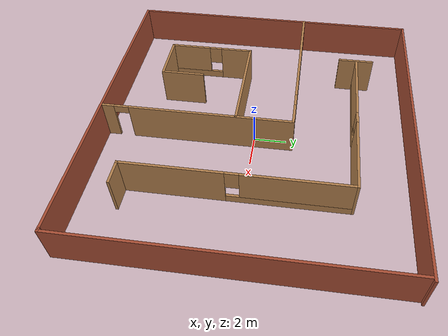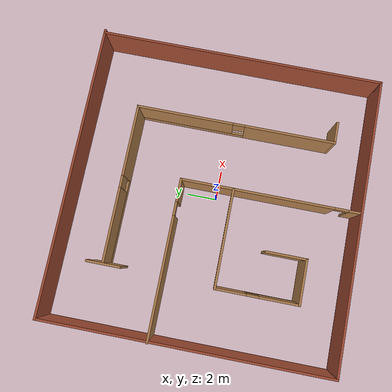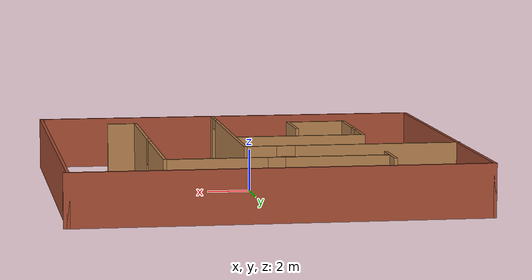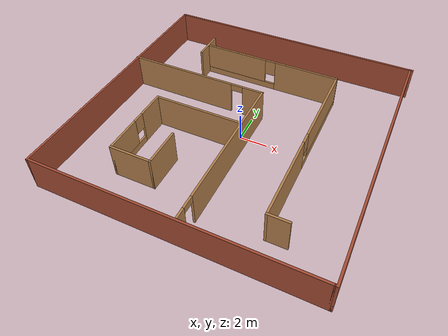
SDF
<?xml version='1.0'?>
<sdf version='1.7'>
  <model name='maze_model'>
    <pose>-0.09937 0.063572 0 0 -0 0</pose>
    <link name='Wall_10'>
      <pose>-0.271155 6.08651 0 0 -0 3.14159</pose>
      <visual name='Wall_10_Visual_0'>
        <pose>-2.84357 0 1.25 0 -0 0</pose>
        <geometry>
          <box>
            <size>4.81286 0.15 2.5</size>
          </box>
        </geometry>
        <material>
          <script>
            <uri>file://media/materials/scripts/gazebo.material</uri>
            <name>Gazebo/Wood</name>
          </script>
          <ambient>1 1 1 1</ambient>
        </material>
        <meta>
          <layer>0</layer>
        </meta>
      </visual>
      <collision name='Wall_10_Collision_0'>
        <geometry>
          <box>
            <size>4.81286 0.15 2.5</size>
          </box>
        </geometry>
        <pose>-2.84357 0 1.25 0 -0 0</pose>
      </collision>
      <visual name='Wall_10_Visual_1'>
        <pose>2.40643 0 0.25 0 -0 0</pose>
        <geometry>
          <box>
            <size>5.68714 0.15 0.5</size>
          </box>
        </geometry>
        <material>
          <script>
            <uri>file://media/materials/scripts/gazebo.material</uri>
            <name>Gazebo/Wood</name>
          </script>
          <ambient>1 1 1 1</ambient>
        </material>
        <meta>
          <layer>0</layer>
        </meta>
      </visual>
      <collision name='Wall_10_Collision_1'>
        <geometry>
          <box>
            <size>5.68714 0.15 0.5</size>
          </box>
        </geometry>
        <pose>2.40643 0 0.25 0 -0 0</pose>
      </collision>
      <visual name='Wall_10_Visual_2'>
        <pose>2.80643 0 1.5 0 -0 0</pose>
        <geometry>
          <box>
            <size>4.88714 0.15 2</size>
          </box>
        </geometry>
        <material>
          <script>
            <uri>file://media/materials/scripts/gazebo.material</uri>
            <name>Gazebo/Wood</name>
          </script>
          <ambient>1 1 1 1</ambient>
        </material>
        <meta>
          <layer>0</layer>
        </meta>
      </visual>
      <collision name='Wall_10_Collision_2'>
        <geometry>
          <box>
            <size>4.88714 0.15 2</size>
          </box>
        </geometry>
        <pose>2.80643 0 1.5 0 -0 0</pose>
      </collision>
      <visual name='Wall_10_Visual_3'>
        <pose>-0.037142 0 1.9 0 -0 0</pose>
        <geometry>
          <box>
            <size>0.8 0.15 1.2</size>
          </box>
        </geometry>
        <material>
          <script>
            <uri>file://media/materials/scripts/gazebo.material</uri>
            <name>Gazebo/Wood</name>
          </script>
          <ambient>1 1 1 1</ambient>
        </material>
        <meta>
          <layer>0</layer>
        </meta>
      </visual>
      <collision name='Wall_10_Collision_3'>
        <geometry>
          <box>
            <size>0.8 0.15 1.2</size>
          </box>
        </geometry>
        <pose>-0.037142 0 1.9 0 -0 0</pose>
      </collision>
    </link>
    <link name='Wall_12'>
      <pose>-4.52562 2.33175 0 0 -0 0</pose>
      <visual name='Wall_12_Visual_0'>
        <pose>-1.23012 0 1.25 0 -0 0</pose>
        <geometry>
          <box>
            <size>8.03976 0.15 2.5</size>
          </box>
        </geometry>
        <material>
          <script>
            <uri>file://media/materials/scripts/gazebo.material</uri>
            <name>Gazebo/Wood</name>
          </script>
          <ambient>1 1 1 1</ambient>
        </material>
        <meta>
          <layer>0</layer>
        </meta>
      </visual>
      <collision name='Wall_12_Collision_0'>
        <geometry>
          <box>
            <size>8.03976 0.15 2.5</size>
          </box>
        </geometry>
        <pose>-1.23012 0 1.25 0 -0 0</pose>
      </collision>
      <visual name='Wall_12_Visual_1'>
        <pose>4.46988 0 1.25 0 -0 0</pose>
        <geometry>
          <box>
            <size>1.56024 0.15 2.5</size>
          </box>
        </geometry>
        <material>
          <script>
            <uri>file://media/materials/scripts/gazebo.material</uri>
            <name>Gazebo/Wood</name>
          </script>
          <ambient>1 1 1 1</ambient>
        </material>
        <meta>
          <layer>0</layer>
        </meta>
      </visual>
      <collision name='Wall_12_Collision_1'>
        <geometry>
          <box>
            <size>1.56024 0.15 2.5</size>
          </box>
        </geometry>
        <pose>4.46988 0 1.25 0 -0 0</pose>
      </collision>
      <visual name='Wall_12_Visual_2'>
        <pose>3.23976 0 2.25 0 -0 0</pose>
        <geometry>
          <box>
            <size>0.9 0.15 0.5</size>
          </box>
        </geometry>
        <material>
          <script>
            <uri>file://media/materials/scripts/gazebo.material</uri>
            <name>Gazebo/Wood</name>
          </script>
          <ambient>1 1 1 1</ambient>
        </material>
        <meta>
          <layer>0</layer>
        </meta>
      </visual>
      <collision name='Wall_12_Collision_2'>
        <geometry>
          <box>
            <size>0.9 0.15 0.5</size>
          </box>
        </geometry>
        <pose>3.23976 0 2.25 0 -0 0</pose>
      </collision>
    </link>
    <link name='Wall_13'>
      <pose>0.649382 -3.46825 0 0 -0 -1.5708</pose>
      <visual name='Wall_13_Visual_0'>
        <pose>-0.823503 0 1.25 0 -0 0</pose>
        <geometry>
          <box>
            <size>10.103 0.15 2.5</size>
          </box>
        </geometry>
        <material>
          <script>
            <uri>file://media/materials/scripts/gazebo.material</uri>
            <name>Gazebo/Wood</name>
          </script>
          <ambient>1 1 1 1</ambient>
        </material>
        <meta>
          <layer>0</layer>
        </meta>
      </visual>
      <collision name='Wall_13_Collision_0'>
        <geometry>
          <box>
            <size>10.103 0.15 2.5</size>
          </box>
        </geometry>
        <pose>-0.823503 0 1.25 0 -0 0</pose>
      </collision>
      <visual name='Wall_13_Visual_1'>
        <pose>5.5015 0 1.25 0 -0 0</pose>
        <geometry>
          <box>
            <size>0.747006 0.15 2.5</size>
          </box>
        </geometry>
        <material>
          <script>
            <uri>file://media/materials/scripts/gazebo.material</uri>
            <name>Gazebo/Wood</name>
          </script>
          <ambient>1 1 1 1</ambient>
        </material>
        <meta>
          <layer>0</layer>
        </meta>
      </visual>
      <collision name='Wall_13_Collision_1'>
        <geometry>
          <box>
            <size>0.747006 0.15 2.5</size>
          </box>
        </geometry>
        <pose>5.5015 0 1.25 0 -0 0</pose>
      </collision>
      <visual name='Wall_13_Visual_2'>
        <pose>4.67799 0 2.25 0 -0 0</pose>
        <geometry>
          <box>
            <size>0.9 0.15 0.5</size>
          </box>
        </geometry>
        <material>
          <script>
            <uri>file://media/materials/scripts/gazebo.material</uri>
            <name>Gazebo/Wood</name>
          </script>
          <ambient>1 1 1 1</ambient>
        </material>
        <meta>
          <layer>0</layer>
        </meta>
      </visual>
      <collision name='Wall_13_Collision_2'>
        <geometry>
          <box>
            <size>0.9 0.15 0.5</size>
          </box>
        </geometry>
        <pose>4.67799 0 2.25 0 -0 0</pose>
      </collision>
    </link>
    <link name='Wall_15'>
      <collision name='Wall_15_Collision'>
        <geometry>
          <box>
            <size>1.5 0.15 2.5</size>
          </box>
        </geometry>
        <pose>0 0 1.25 0 -0 0</pose>
      </collision>
      <visual name='Wall_15_Visual'>
        <pose>0 0 1.25 0 -0 0</pose>
        <geometry>
          <box>
            <size>1.5 0.15 2.5</size>
          </box>
        </geometry>
        <material>
          <script>
            <uri>file://media/materials/scripts/gazebo.material</uri>
            <name>Gazebo/Wood</name>
          </script>
          <ambient>1 1 1 1</ambient>
        </material>
        <meta>
          <layer>0</layer>
        </meta>
      </visual>
      <pose>5.57885 -7.01349 0 0 -0 0</pose>
    </link>
    <link name='Wall_17'>
      <collision name='Wall_17_Collision'>
        <geometry>
          <box>
            <size>2.25 0.15 2.5</size>
          </box>
        </geometry>
        <pose>0 0 1.25 0 -0 0</pose>
      </collision>
      <visual name='Wall_17_Visual'>
        <pose>0 0 1.25 0 -0 0</pose>
        <geometry>
          <box>
            <size>2.25 0.15 2.5</size>
          </box>
        </geometry>
        <material>
          <script>
            <uri>file://media/materials/scripts/gazebo.material</uri>
            <name>Gazebo/Wood</name>
          </script>
          <ambient>1 1 1 1</ambient>
        </material>
        <meta>
          <layer>0</layer>
        </meta>
      </visual>
      <pose>-5.57415 6.0555 0 0 -0 -1.5708</pose>
    </link>
    <link name='Wall_2'>
      <collision name='Wall_2_Collision'>
        <geometry>
          <box>
            <size>19.5 0.15 2.5</size>
          </box>
        </geometry>
        <pose>0 0 1.25 0 -0 0</pose>
      </collision>
      <visual name='Wall_2_Visual'>
        <pose>0 0 1.25 0 -0 0</pose>
        <geometry>
          <box>
            <size>19.5 0.15 2.5</size>
          </box>
        </geometry>
        <material>
          <script>
            <uri>file://media/materials/scripts/gazebo.material</uri>
            <name>Gazebo/Bricks</name>
          </script>
          <ambient>1 1 1 1</ambient>
        </material>
        <meta>
          <layer>0</layer>
        </meta>
      </visual>
      <pose>0.025618 9.425 0 0 -0 0</pose>
    </link>
    <link name='Wall_20'>
      <collision name='Wall_20_Collision'>
        <geometry>
          <box>
            <size>6.5 0.15 2.5</size>
          </box>
        </geometry>
        <pose>0 0 1.25 0 -0 0</pose>
      </collision>
      <visual name='Wall_20_Visual'>
        <pose>0 0 1.25 0 -0 0</pose>
        <geometry>
          <box>
            <size>6.5 0.15 2.5</size>
          </box>
        </geometry>
        <material>
          <script>
            <uri>file://media/materials/scripts/gazebo.material</uri>
            <name>Gazebo/Wood</name>
          </script>
          <ambient>1 1 1 1</ambient>
        </material>
        <meta>
          <layer>0</layer>
        </meta>
      </visual>
      <pose>-2.55945 -1.10698 0 0 -0 3.14159</pose>
    </link>
    <link name='Wall_21'>
      <pose>-5.73445 -3.78198 0 0 -0 -1.5708</pose>
      <visual name='Wall_21_Visual_0'>
        <pose>-1.71906 0 1.25 0 -0 0</pose>
        <geometry>
          <box>
            <size>2.06188 0.15 2.5</size>
          </box>
        </geometry>
        <material>
          <script>
            <uri>file://media/materials/scripts/gazebo.material</uri>
            <name>Gazebo/Wood</name>
          </script>
          <ambient>1 1 1 1</ambient>
        </material>
        <meta>
          <layer>0</layer>
        </meta>
      </visual>
      <collision name='Wall_21_Collision_0'>
        <geometry>
          <box>
            <size>2.06188 0.15 2.5</size>
          </box>
        </geometry>
        <pose>-1.71906 0 1.25 0 -0 0</pose>
      </collision>
      <visual name='Wall_21_Visual_1'>
        <pose>1.03094 0 0.25 0 -0 0</pose>
        <geometry>
          <box>
            <size>3.43812 0.15 0.5</size>
          </box>
        </geometry>
        <material>
          <script>
            <uri>file://media/materials/scripts/gazebo.material</uri>
            <name>Gazebo/Wood</name>
          </script>
          <ambient>1 1 1 1</ambient>
        </material>
        <meta>
          <layer>0</layer>
        </meta>
      </visual>
      <collision name='Wall_21_Collision_1'>
        <geometry>
          <box>
            <size>3.43812 0.15 0.5</size>
          </box>
        </geometry>
        <pose>1.03094 0 0.25 0 -0 0</pose>
      </collision>
      <visual name='Wall_21_Visual_2'>
        <pose>1.43094 0 1.5 0 -0 0</pose>
        <geometry>
          <box>
            <size>2.63812 0.15 2</size>
          </box>
        </geometry>
        <material>
          <script>
            <uri>file://media/materials/scripts/gazebo.material</uri>
            <name>Gazebo/Wood</name>
          </script>
          <ambient>1 1 1 1</ambient>
        </material>
        <meta>
          <layer>0</layer>
        </meta>
      </visual>
      <collision name='Wall_21_Collision_2'>
        <geometry>
          <box>
            <size>2.63812 0.15 2</size>
          </box>
        </geometry>
        <pose>1.43094 0 1.5 0 -0 0</pose>
      </collision>
      <visual name='Wall_21_Visual_3'>
        <pose>-0.288121 0 1.9 0 -0 0</pose>
        <geometry>
          <box>
            <size>0.8 0.15 1.2</size>
          </box>
        </geometry>
        <material>
          <script>
            <uri>file://media/materials/scripts/gazebo.material</uri>
            <name>Gazebo/Wood</name>
          </script>
          <ambient>1 1 1 1</ambient>
        </material>
        <meta>
          <layer>0</layer>
        </meta>
      </visual>
      <collision name='Wall_21_Collision_3'>
        <geometry>
          <box>
            <size>0.8 0.15 1.2</size>
          </box>
        </geometry>
        <pose>-0.288121 0 1.9 0 -0 0</pose>
      </collision>
    </link>
    <link name='Wall_22'>
      <collision name='Wall_22_Collision'>
        <geometry>
          <box>
            <size>3 0.15 2.5</size>
          </box>
        </geometry>
        <pose>0 0 1.25 0 -0 0</pose>
      </collision>
      <visual name='Wall_22_Visual'>
        <pose>0 0 1.25 0 -0 0</pose>
        <geometry>
          <box>
            <size>3 0.15 2.5</size>
          </box>
        </geometry>
        <material>
          <script>
            <uri>file://media/materials/scripts/gazebo.material</uri>
            <name>Gazebo/Wood</name>
          </script>
          <ambient>1 1 1 1</ambient>
        </material>
        <meta>
          <layer>0</layer>
        </meta>
      </visual>
      <pose>-4.30945 -6.45698 0 0 -0 0</pose>
    </link>
    <link name='Wall_23'>
      <collision name='Wall_23_Collision'>
        <geometry>
          <box>
            <size>2.75 0.15 2.5</size>
          </box>
        </geometry>
        <pose>0 0 1.25 0 -0 0</pose>
      </collision>
      <visual name='Wall_23_Visual'>
        <pose>0 0 1.25 0 -0 0</pose>
        <geometry>
          <box>
            <size>2.75 0.15 2.5</size>
          </box>
        </geometry>
        <material>
          <script>
            <uri>file://media/materials/scripts/gazebo.material</uri>
            <name>Gazebo/Wood</name>
          </script>
          <ambient>1 1 1 1</ambient>
        </material>
        <meta>
          <layer>0</layer>
        </meta>
      </visual>
      <pose>-2.88445 -5.15698 0 0 -0 1.5708</pose>
    </link>
    <link name='Wall_4'>
      <collision name='Wall_4_Collision'>
        <geometry>
          <box>
            <size>19 0.15 2.5</size>
          </box>
        </geometry>
        <pose>0 0 1.25 0 -0 0</pose>
      </collision>
      <visual name='Wall_4_Visual'>
        <pose>0 0 1.25 0 -0 0</pose>
        <geometry>
          <box>
            <size>19 0.15 2.5</size>
          </box>
        </geometry>
        <material>
          <script>
            <uri>file://media/materials/scripts/gazebo.material</uri>
            <name>Gazebo/Bricks</name>
          </script>
          <ambient>1 1 1 1</ambient>
        </material>
        <meta>
          <layer>0</layer>
        </meta>
      </visual>
      <pose>-9.64938 -0 0 0 -0 -1.5708</pose>
    </link>
    <link name='Wall_5'>
      <collision name='Wall_5_Collision'>
        <geometry>
          <box>
            <size>19.25 0.15 2.5</size>
          </box>
        </geometry>
        <pose>0 0 1.25 0 -0 0</pose>
      </collision>
      <visual name='Wall_5_Visual'>
        <pose>0 0 1.25 0 -0 0</pose>
        <geometry>
          <box>
            <size>19.25 0.15 2.5</size>
          </box>
        </geometry>
        <material>
          <script>
            <uri>file://media/materials/scripts/gazebo.material</uri>
            <name>Gazebo/Bricks</name>
          </script>
          <ambient>1 1 1 1</ambient>
        </material>
        <meta>
          <layer>0</layer>
        </meta>
      </visual>
      <pose>-0.099382 -9.425 0 0 -0 0</pose>
    </link>
    <link name='Wall_6'>
      <collision name='Wall_6_Collision'>
        <geometry>
          <box>
            <size>0.25 0.15 2.5</size>
          </box>
        </geometry>
        <pose>0 0 1.25 0 -0 0</pose>
      </collision>
      <visual name='Wall_6_Visual'>
        <pose>0 0 1.25 0 -0 0</pose>
        <geometry>
          <box>
            <size>0.25 0.15 2.5</size>
          </box>
        </geometry>
        <material>
          <script>
            <uri>file://media/materials/scripts/gazebo.material</uri>
            <name>Gazebo/Bricks</name>
          </script>
          <ambient>1 1 1 1</ambient>
        </material>
        <meta>
          <layer>0</layer>
        </meta>
      </visual>
      <pose>9.50062 -9.425 0 0 -0 0</pose>
    </link>
    <link name='Wall_7'>
      <collision name='Wall_7_Collision'>
        <geometry>
          <box>
            <size>19 0.15 2.5</size>
          </box>
        </geometry>
        <pose>0 0 1.25 0 -0 0</pose>
      </collision>
      <visual name='Wall_7_Visual'>
        <pose>0 0 1.25 0 -0 0</pose>
        <geometry>
          <box>
            <size>19 0.15 2.5</size>
          </box>
        </geometry>
        <material>
          <script>
            <uri>file://media/materials/scripts/gazebo.material</uri>
            <name>Gazebo/Bricks</name>
          </script>
          <ambient>1 1 1 1</ambient>
        </material>
        <meta>
          <layer>0</layer>
        </meta>
      </visual>
      <pose>9.55062 -0 0 0 -0 1.5708</pose>
    </link>
    <link name='Wall_9'>
      <pose>4.90384 -0.463492 0 0 -0 1.5708</pose>
      <visual name='Wall_9_Visual_0'>
        <pose>-3.61174 0 1.25 0 -0 0</pose>
        <geometry>
          <box>
            <size>6.02653 0.15 2.5</size>
          </box>
        </geometry>
        <material>
          <script>
            <uri>file://media/materials/scripts/gazebo.material</uri>
            <name>Gazebo/Wood</name>
          </script>
          <ambient>1 1 1 1</ambient>
        </material>
        <meta>
          <layer>0</layer>
        </meta>
      </visual>
      <collision name='Wall_9_Collision_0'>
        <geometry>
          <box>
            <size>6.02653 0.15 2.5</size>
          </box>
        </geometry>
        <pose>-3.61174 0 1.25 0 -0 0</pose>
      </collision>
      <visual name='Wall_9_Visual_1'>
        <pose>3.01326 0 0.25 0 -0 0</pose>
        <geometry>
          <box>
            <size>7.22347 0.15 0.5</size>
          </box>
        </geometry>
        <material>
          <script>
            <uri>file://media/materials/scripts/gazebo.material</uri>
            <name>Gazebo/Wood</name>
          </script>
          <ambient>1 1 1 1</ambient>
        </material>
        <meta>
          <layer>0</layer>
        </meta>
      </visual>
      <collision name='Wall_9_Collision_1'>
        <geometry>
          <box>
            <size>7.22347 0.15 0.5</size>
          </box>
        </geometry>
        <pose>3.01326 0 0.25 0 -0 0</pose>
      </collision>
      <visual name='Wall_9_Visual_2'>
        <pose>3.41326 0 1.5 0 -0 0</pose>
        <geometry>
          <box>
            <size>6.42347 0.15 2</size>
          </box>
        </geometry>
        <material>
          <script>
            <uri>file://media/materials/scripts/gazebo.material</uri>
            <name>Gazebo/Wood</name>
          </script>
          <ambient>1 1 1 1</ambient>
        </material>
        <meta>
          <layer>0</layer>
        </meta>
      </visual>
      <collision name='Wall_9_Collision_2'>
        <geometry>
          <box>
            <size>6.42347 0.15 2</size>
          </box>
        </geometry>
        <pose>3.41326 0 1.5 0 -0 0</pose>
      </collision>
      <visual name='Wall_9_Visual_3'>
        <pose>-0.198474 0 1.9 0 -0 0</pose>
        <geometry>
          <box>
            <size>0.8 0.15 1.2</size>
          </box>
        </geometry>
        <material>
          <script>
            <uri>file://media/materials/scripts/gazebo.material</uri>
            <name>Gazebo/Wood</name>
          </script>
          <ambient>1 1 1 1</ambient>
        </material>
        <meta>
          <layer>0</layer>
        </meta>
      </visual>
      <collision name='Wall_9_Collision_3'>
        <geometry>
          <box>
            <size>0.8 0.15 1.2</size>
          </box>
        </geometry>
        <pose>-0.198474 0 1.9 0 -0 0</pose>
      </collision>
    </link>
    <static>1</static>
  </model>
</sdf>
